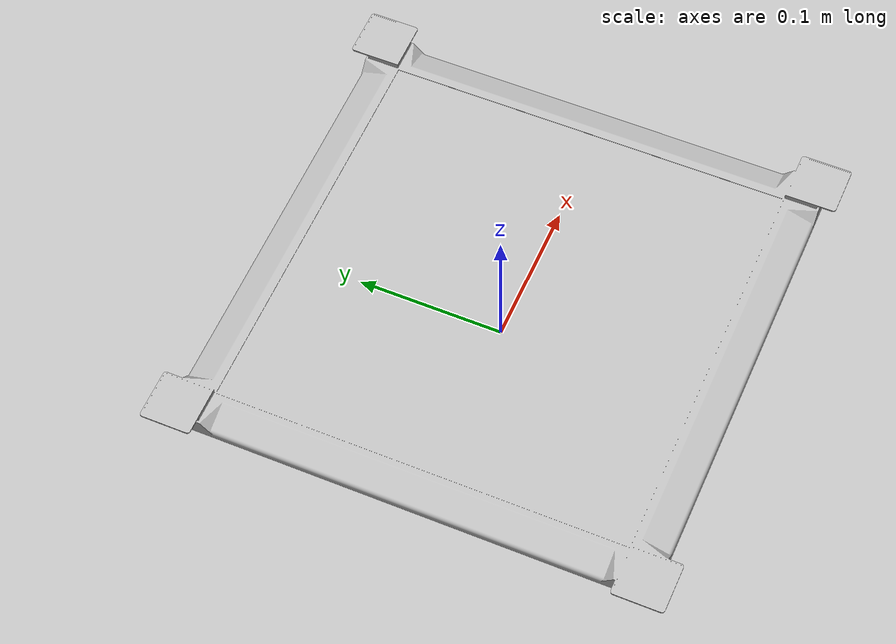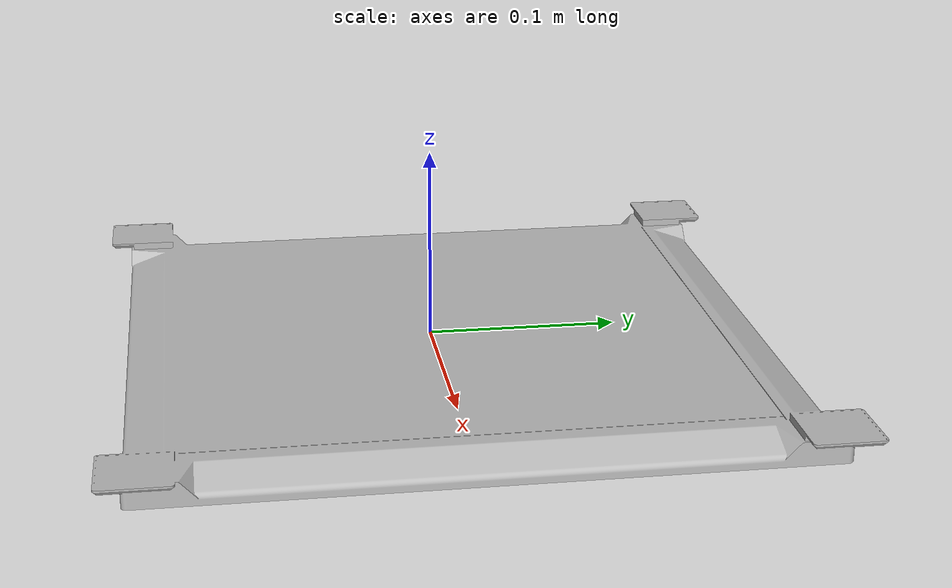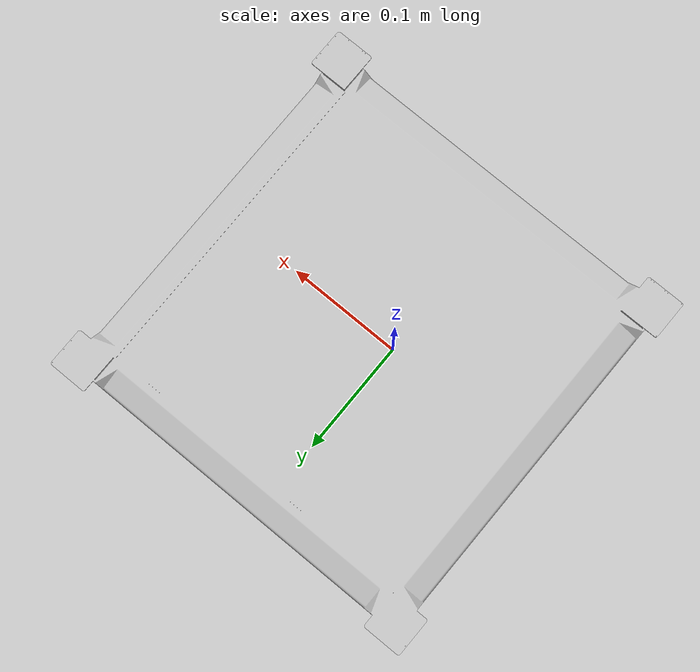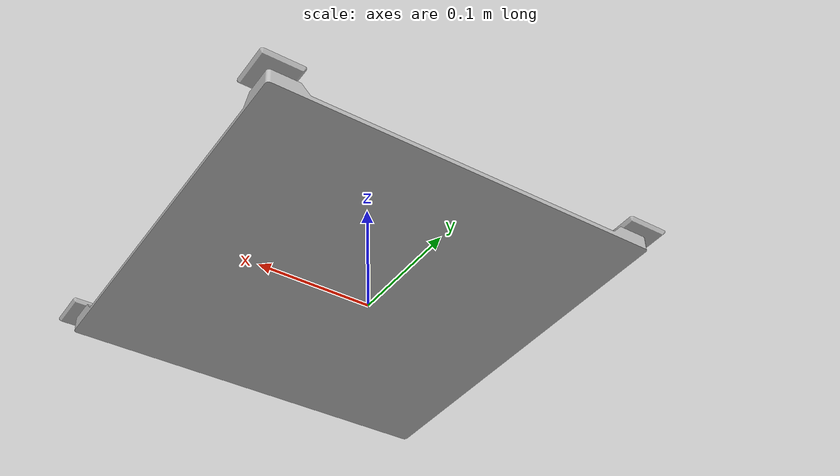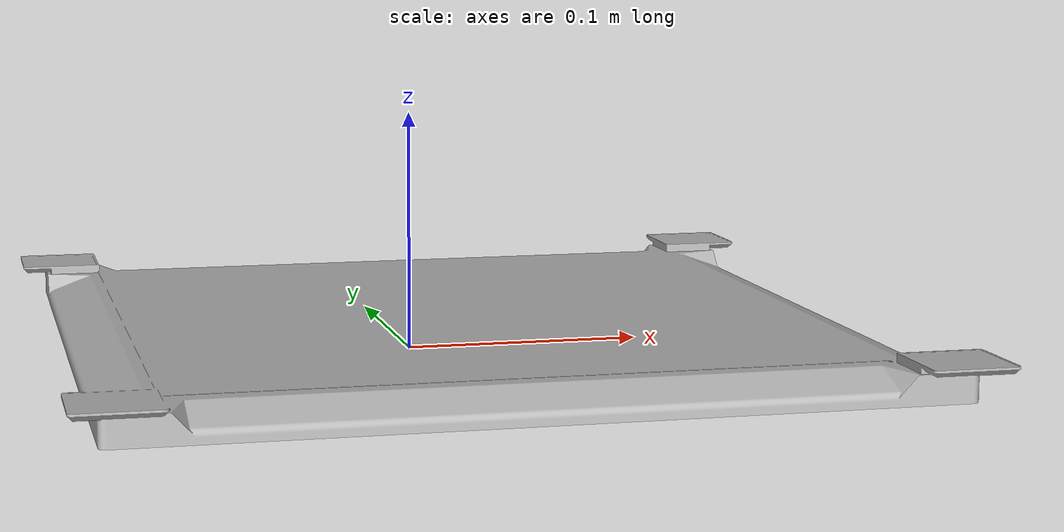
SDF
<?xml version="1.0" ?>
<sdf version="1.6">
  <model name="board">
    <static>true</static> <!-- or false if it should move -->
    <link name="link">
      <visual name="visual">
        <geometry>
          <mesh>
            <uri>model://board/meshes/board.dae</uri>
          </mesh>
        </geometry>
      </visual>
      <collision name="collision">
        <geometry>
          <mesh>
            <uri>model://board/meshes/board.dae</uri>
          </mesh>
        </geometry>
      </collision>
    </link>
  </model>
</sdf>
